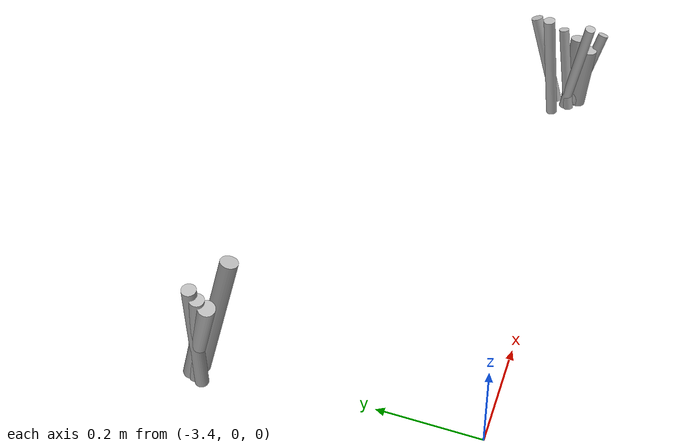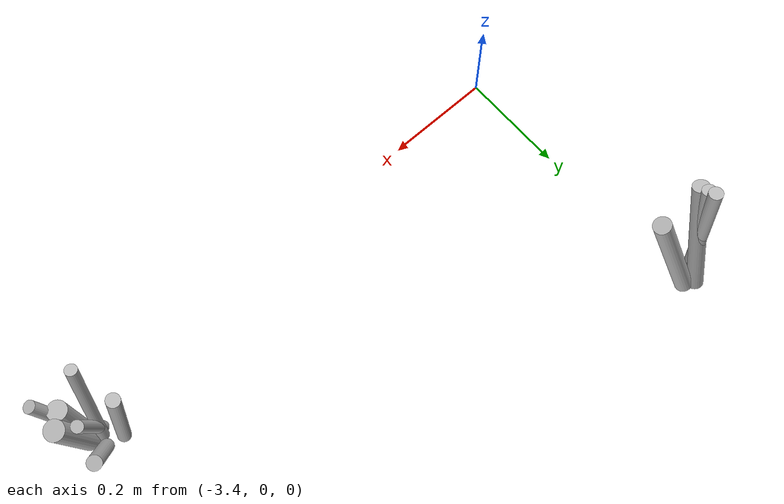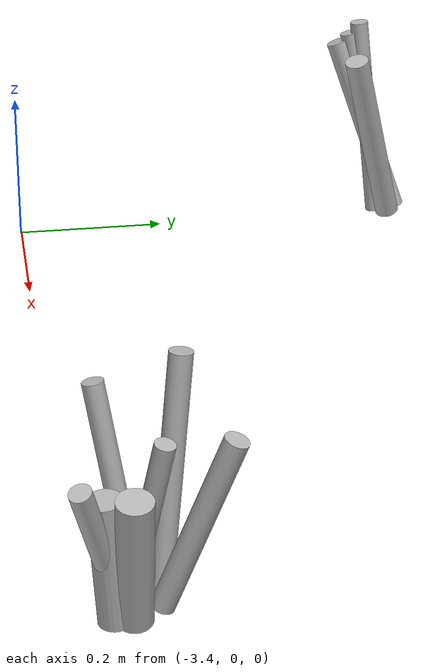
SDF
<sdf version="1.6">
 <world name="default">
  <model name="tussocks">
   <static>true</static>
   <link name="tuft85_2">
    <pose>-3.4402 0.5090 0.1214 0 0.3436 4.4087</pose>
    <visual name="tuft85_2_v">
     <geometry><cylinder><radius>0.0152</radius><length>0.2638</length></cylinder></geometry>
     <material>
      <script>
       <uri>model://bushfire/materials/scripts</uri>
       <uri>model://bushfire/materials/textures</uri>
       <name>Bushfire/Tussock</name>
      </script>
     </material>
    </visual>
   </link>
   <link name="tuft85_4">
    <pose>-3.4414 0.5118 0.1257 0 0.2247 4.3658</pose>
    <visual name="tuft85_4_v">
     <geometry><cylinder><radius>0.0129</radius><length>0.2733</length></cylinder></geometry>
     <material>
      <script>
       <uri>model://bushfire/materials/scripts</uri>
       <uri>model://bushfire/materials/textures</uri>
       <name>Bushfire/Foliage2</name>
      </script>
     </material>
    </visual>
   </link>
   <link name="tuft85_6">
    <pose>-3.4426 0.5113 0.1324 0 0.1100 4.3456</pose>
    <visual name="tuft85_6_v">
     <geometry><cylinder><radius>0.0128</radius><length>0.2878</length></cylinder></geometry>
     <material>
      <script>
       <uri>model://bushfire/materials/scripts</uri>
       <uri>model://bushfire/materials/textures</uri>
       <name>Bushfire/Tussock</name>
      </script>
     </material>
    </visual>
   </link>
   <link name="tuft85_8">
    <pose>-3.3821 0.5062 0.1227 0 0.3316 5.4362</pose>
    <visual name="tuft85_8_v">
     <geometry><cylinder><radius>0.0165</radius><length>0.2668</length></cylinder></geometry>
     <material>
      <script>
       <uri>model://bushfire/materials/scripts</uri>
       <uri>model://bushfire/materials/textures</uri>
       <name>Bushfire/Tussock</name>
      </script>
     </material>
    </visual>
   </link>
   <link name="tuft179_0">
    <pose>-2.4208 0.0240 0.0838 0 0.3740 5.5894</pose>
    <visual name="tuft179_0_v">
     <geometry><cylinder><radius>0.0119</radius><length>0.1821</length></cylinder></geometry>
     <material>
      <script>
       <uri>model://bushfire/materials/scripts</uri>
       <uri>model://bushfire/materials/textures</uri>
       <name>Bushfire/Foliage2</name>
      </script>
     </material>
    </visual>
   </link>
   <link name="tuft179_1">
    <pose>-2.4340 0.1204 0.0987 0 0.3628 1.1823</pose>
    <visual name="tuft179_1_v">
     <geometry><cylinder><radius>0.0132</radius><length>0.2146</length></cylinder></geometry>
     <material>
      <script>
       <uri>model://bushfire/materials/scripts</uri>
       <uri>model://bushfire/materials/textures</uri>
       <name>Bushfire/Foliage2</name>
      </script>
     </material>
    </visual>
   </link>
   <link name="tuft179_2">
    <pose>-2.4688 0.0442 0.1157 0 0.1935 4.1045</pose>
    <visual name="tuft179_2_v">
     <geometry><cylinder><radius>0.0113</radius><length>0.2515</length></cylinder></geometry>
     <material>
      <script>
       <uri>model://bushfire/materials/scripts</uri>
       <uri>model://bushfire/materials/textures</uri>
       <name>Bushfire/Tussock</name>
      </script>
     </material>
    </visual>
   </link>
   <link name="tuft179_4">
    <pose>-2.4490 0.0703 0.0931 0 0.2325 0.8887</pose>
    <visual name="tuft179_4_v">
     <geometry><cylinder><radius>0.0112</radius><length>0.2025</length></cylinder></geometry>
     <material>
      <script>
       <uri>model://bushfire/materials/scripts</uri>
       <uri>model://bushfire/materials/textures</uri>
       <name>Bushfire/Foliage2</name>
      </script>
     </material>
    </visual>
   </link>
   <link name="tuft179_5">
    <pose>-2.4173 0.0554 0.0730 0 0.2037 6.2538</pose>
    <visual name="tuft179_5_v">
     <geometry><cylinder><radius>0.0194</radius><length>0.1587</length></cylinder></geometry>
     <material>
      <script>
       <uri>model://bushfire/materials/scripts</uri>
       <uri>model://bushfire/materials/textures</uri>
       <name>Bushfire/Tussock</name>
      </script>
     </material>
    </visual>
   </link>
   <link name="tuft179_6">
    <pose>-2.4303 0.0325 0.0677 0 0.1025 5.6006</pose>
    <visual name="tuft179_6_v">
     <geometry><cylinder><radius>0.0186</radius><length>0.1473</length></cylinder></geometry>
     <material>
      <script>
       <uri>model://bushfire/materials/scripts</uri>
       <uri>model://bushfire/materials/textures</uri>
       <name>Bushfire/Foliage2</name>
      </script>
     </material>
    </visual>
   </link>
   <link name="tuft179_7">
    <pose>-2.4926 0.1003 0.1228 0 0.1213 2.2118</pose>
    <visual name="tuft179_7_v">
     <geometry><cylinder><radius>0.0126</radius><length>0.2670</length></cylinder></geometry>
     <material>
      <script>
       <uri>model://bushfire/materials/scripts</uri>
       <uri>model://bushfire/materials/textures</uri>
       <name>Bushfire/Tussock</name>
      </script>
     </material>
    </visual>
   </link>
  </model>
 </world>
</sdf>
